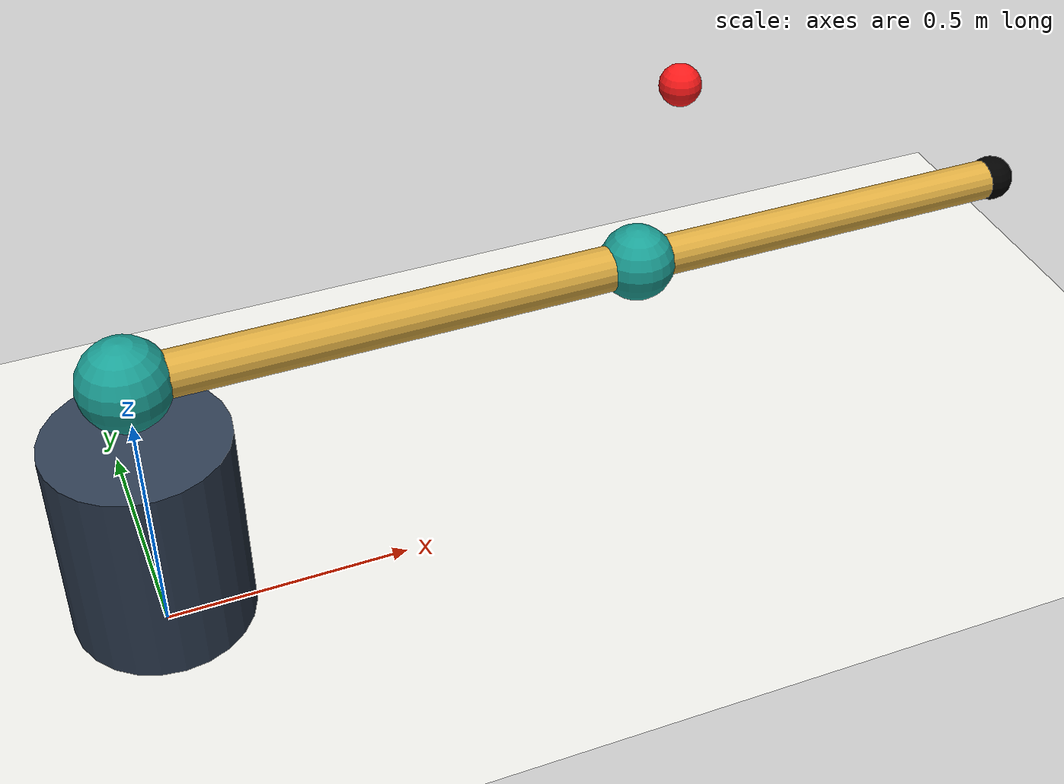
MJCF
<mujoco model="simple_spatial_arm">
  <compiler angle="radian" inertiafromgeom="true"/>
  <option timestep="0.002" gravity="0 0 -9.81"/>

  <default>
    <joint damping="2.0" armature="0.03"/>
    <geom contype="0" conaffinity="0" density="350" rgba="0.25 0.36 0.48 1"/>
    <position kp="4200" dampratio="1.0" ctrllimited="true" ctrlrange="-3.14 3.14"/>
  </default>

  <worldbody>
    <light pos="0 0 3"/>
    <geom name="floor" type="plane" size="3 3 0.02" rgba="0.92 0.92 0.9 1"/>
    <site name="target" pos="1.25 0.35 0.75" size="0.045" rgba="1 0.1 0.1 1"/>
    <body name="base" pos="0 0 0.25">
      <joint name="base_yaw" type="hinge" axis="0 0 1" range="-3.14 3.14"/>
      <geom name="base_geom" type="cylinder" size="0.18 0.22" rgba="0.18 0.24 0.32 1"/>
      <body name="upper_arm" pos="0 0 0.35">
        <joint name="shoulder_pitch" type="hinge" axis="0 1 0" range="-2.2 2.2"/>
        <geom name="shoulder_hub" type="sphere" size="0.09" rgba="0.1 0.62 0.58 1"/>
        <geom name="upper_arm_geom" type="capsule" fromto="0 0 0 1.0 0 0" size="0.045" rgba="0.85 0.66 0.25 1"/>
        <body name="forearm" pos="1.0 0 0">
          <joint name="elbow_pitch" type="hinge" axis="0 1 0" range="-2.6 2.6"/>
          <geom name="elbow_hub" type="sphere" size="0.075" rgba="0.1 0.62 0.58 1"/>
          <geom name="forearm_geom" type="capsule" fromto="0 0 0 0.8 0 0" size="0.04" rgba="0.85 0.66 0.25 1"/>
          <site name="end_effector" pos="0.8 0 0" size="0.045" rgba="0 0 0 1"/>
        </body>
      </body>
    </body>
  </worldbody>

  <actuator>
    <position name="base_yaw_position" joint="base_yaw"/>
    <position name="shoulder_pitch_position" joint="shoulder_pitch"/>
    <position name="elbow_pitch_position" joint="elbow_pitch"/>
  </actuator>
</mujoco>
